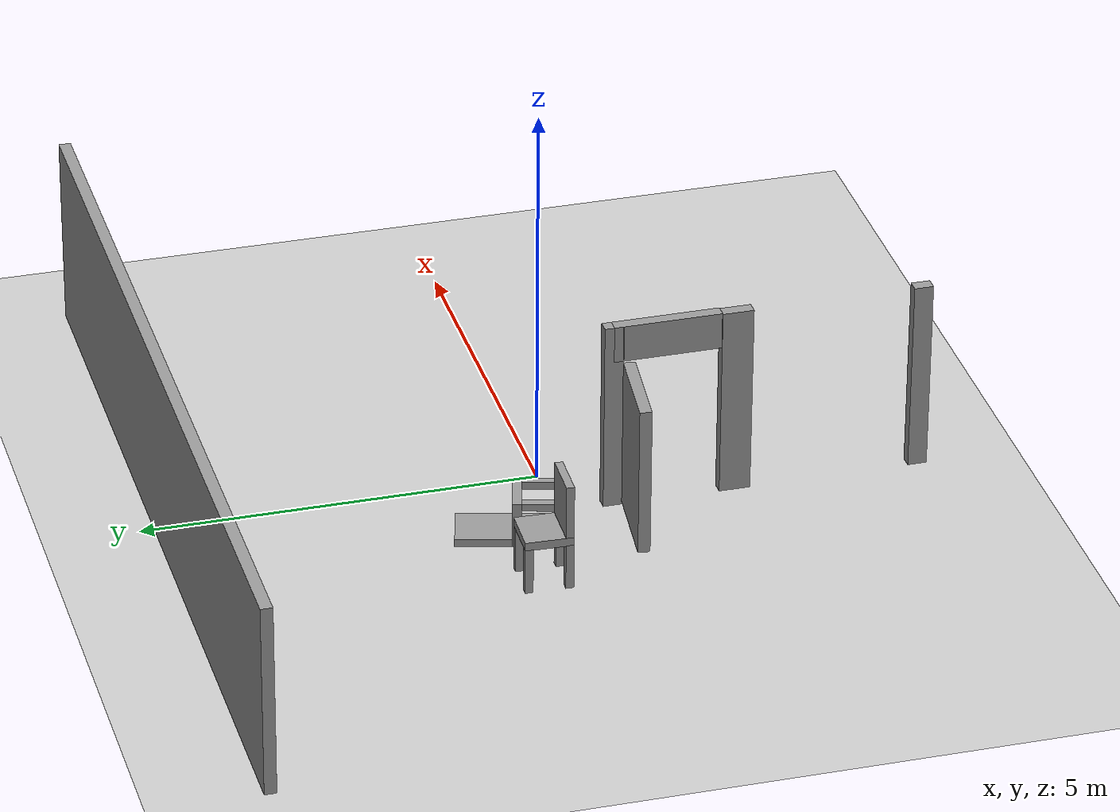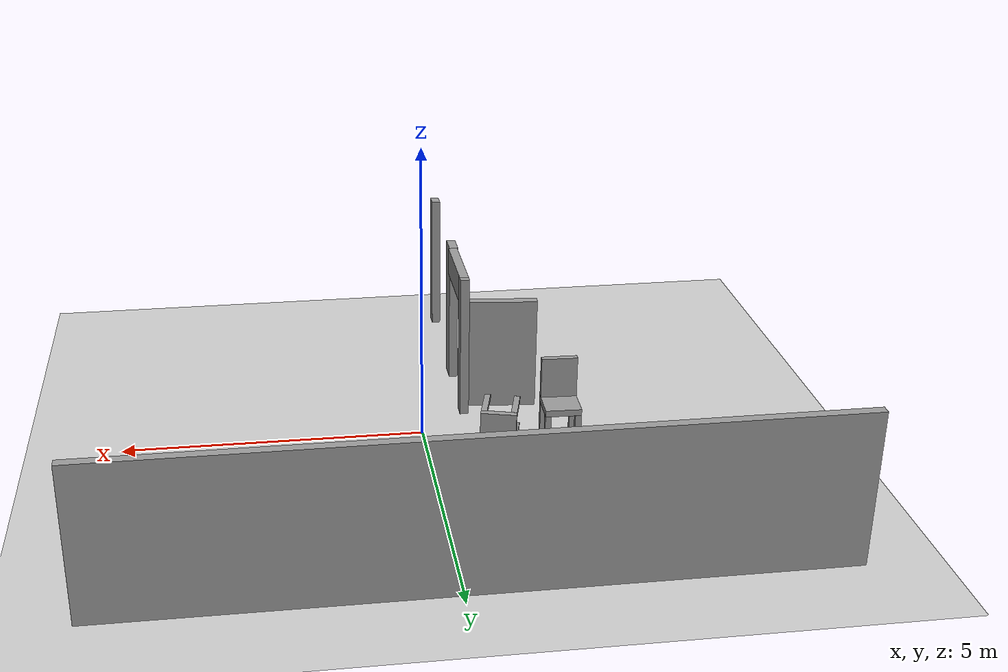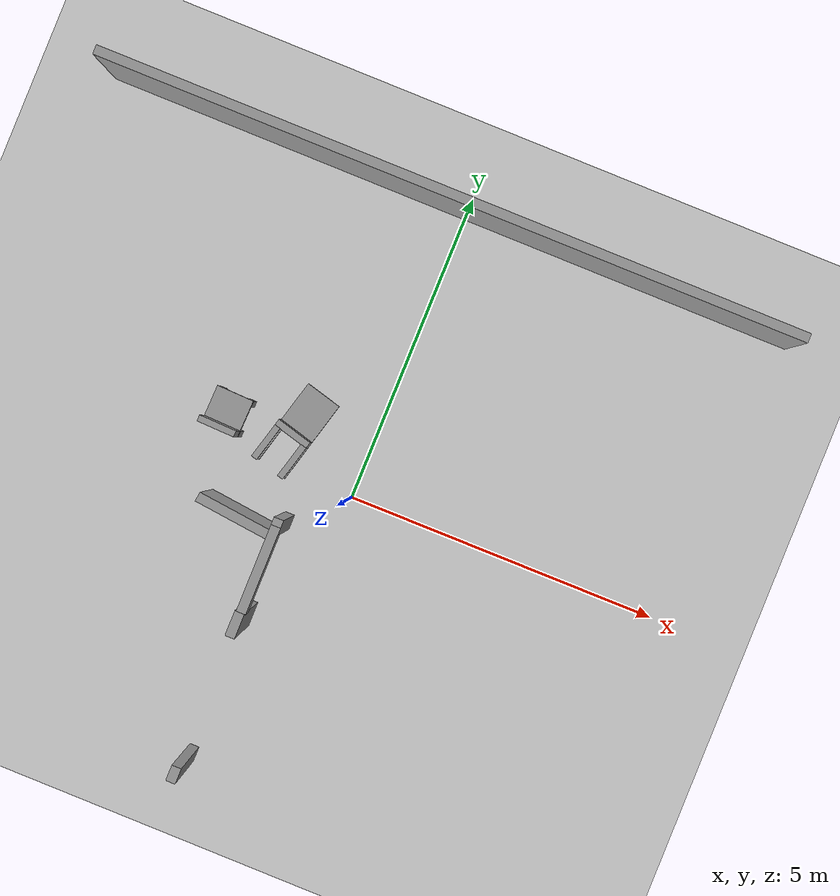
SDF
<sdf version="1.7">
 <world name="default">
  <model name="ground_plane">
   <static>1</static>
   <link name="link">
    <collision name="collision">
     <geometry><plane><normal>0 0 1</normal><size>100 100</size></plane></geometry>
     <surface>
      <contact><collide_bitmask>65535</collide_bitmask></contact>
      <friction><ode><mu>100</mu><mu2>50</mu2></ode></friction>
     </surface>
    </collision>
    <visual name="visual">
     <cast_shadows>0</cast_shadows>
     <geometry><plane><normal>0 0 1</normal><size>100 100</size></plane></geometry>
     <material>
      <script><uri>file://media/materials/scripts/gazebo.material</uri><name>Gazebo/Grey</name></script>
     </material>
    </visual>
   </link>
  </model>
  <model name="demo_clean">
   <link name="Wall_21_clone">
    <pose>-0.802658 -0.717313 0 0 0 -1.5708</pose>
    <inertial>
     <inertia><ixx>0</ixx><ixy>0</ixy><ixz>0</ixz><iyy>0</iyy><iyz>0</iyz><izz>0</izz></inertia>
     <mass>0</mass>
    </inertial>
    <visual name="Wall_21_Visual">
     <pose>0 0 1.25 0 -0 0</pose>
     <geometry><box><size>0.240964 0.15 2.5</size></box></geometry>
     <material>
      <script><uri>file://media/materials/scripts/gazebo.material</uri><name>Gazebo/Grey</name></script>
      <ambient>1 1 1 1</ambient>
      <shader type="pixel"/>
     </material>
     <meta><layer>0</layer></meta>
    </visual>
    <collision name="Wall_21_Collision">
     <pose>0 0 1.25 0 -0 0</pose>
     <geometry><box><size>0.240964 0.15 2.5</size></box></geometry>
     <surface>
      <friction>
       <ode><mu>1</mu><mu2>1</mu2><fdir1>0 0 0</fdir1><slip1>0</slip1><slip2>0</slip2></ode>
       <torsional>
        <coefficient>1</coefficient>
        <patch_radius>0</patch_radius>
        <surface_radius>0</surface_radius>
        <use_patch_radius>1</use_patch_radius>
        <ode><slip>0</slip></ode>
       </torsional>
      </friction>
      <bounce><restitution_coefficient>0</restitution_coefficient><threshold>1e+06</threshold></bounce>
      <contact>
       <collide_without_contact>0</collide_without_contact>
       <collide_without_contact_bitmask>1</collide_without_contact_bitmask>
       <collide_bitmask>1</collide_bitmask>
       <ode>
        <soft_cfm>0</soft_cfm>
        <soft_erp>0.2</soft_erp>
        <kp>1e+13</kp>
        <kd>1</kd>
        <max_vel>0.01</max_vel>
        <min_depth>0</min_depth>
       </ode>
       <bullet>
        <split_impulse>1</split_impulse>
        <split_impulse_penetration_threshold>-0.01</split_impulse_penetration_threshold>
        <soft_cfm>0</soft_cfm>
        <soft_erp>0.2</soft_erp>
        <kp>1e+13</kp>
        <kd>1</kd>
       </bullet>
      </contact>
     </surface>
    </collision>
   </link>
   <link name="Wall_21_clone_0">
    <pose>-0.820336 -2.26773 0 0 0 -1.5708</pose>
    <inertial>
     <inertia><ixx>0</ixx><ixy>0</ixy><ixz>0</ixz><iyy>0</iyy><iyz>0</iyz><izz>0</izz></inertia>
     <mass>0</mass>
    </inertial>
    <visual name="Wall_21_Visual">
     <pose>0 0 1.25 0 -0 0</pose>
     <geometry><box><size>0.394105 0.15 2.5</size></box></geometry>
     <material>
      <script><uri>file://media/materials/scripts/gazebo.material</uri><name>Gazebo/Grey</name></script>
      <ambient>1 1 1 1</ambient>
      <shader type="pixel"/>
     </material>
     <meta><layer>0</layer></meta>
    </visual>
    <collision name="Wall_21_Collision">
     <pose>0 0 1.25 0 -0 0</pose>
     <geometry><box><size>0.394105 0.15 2.5</size></box></geometry>
     <surface>
      <friction>
       <ode><mu>1</mu><mu2>1</mu2><fdir1>0 0 0</fdir1><slip1>0</slip1><slip2>0</slip2></ode>
       <torsional>
        <coefficient>1</coefficient>
        <patch_radius>0</patch_radius>
        <surface_radius>0</surface_radius>
        <use_patch_radius>1</use_patch_radius>
        <ode><slip>0</slip></ode>
       </torsional>
      </friction>
      <bounce><restitution_coefficient>0</restitution_coefficient><threshold>1e+06</threshold></bounce>
      <contact>
       <collide_without_contact>0</collide_without_contact>
       <collide_without_contact_bitmask>1</collide_without_contact_bitmask>
       <collide_bitmask>1</collide_bitmask>
       <ode>
        <soft_cfm>0</soft_cfm>
        <soft_erp>0.2</soft_erp>
        <kp>1e+13</kp>
        <kd>1</kd>
        <max_vel>0.01</max_vel>
        <min_depth>0</min_depth>
       </ode>
       <bullet>
        <split_impulse>1</split_impulse>
        <split_impulse_penetration_threshold>-0.01</split_impulse_penetration_threshold>
        <soft_cfm>0</soft_cfm>
        <soft_erp>0.2</soft_erp>
        <kp>1e+13</kp>
        <kd>1</kd>
       </bullet>
      </contact>
     </surface>
    </collision>
   </link>
   <link name="Wall_21_clone_0_clone_0_clone_clone">
    <pose>-1.47342 -0.839052 -0.23202 0 -0 3.0297</pose>
    <inertial>
     <inertia><ixx>0</ixx><ixy>0</ixy><ixz>0</ixz><iyy>0</iyy><iyz>0</iyz><izz>0</izz></inertia>
     <mass>0</mass>
    </inertial>
    <gravity>0</gravity>
    <visual name="Wall_21_Visual">
     <pose>0 0 1.25 0 -0 0</pose>
     <geometry><box><size>1.1941 0.15 1.96033</size></box></geometry>
     <material>
      <script><uri>file://media/materials/scripts/gazebo.material</uri><name>Gazebo/Grey</name></script>
      <ambient>1 1 1 1</ambient>
      <shader type="pixel"><normal_map>__default__</normal_map></shader>
      <diffuse>0.7 0.7 0.7 1</diffuse>
      <specular>0.01 0.01 0.01 1</specular>
      <emissive>0 0 0 1</emissive>
     </material>
     <meta><layer>0</layer></meta>
    </visual>
    <collision name="Wall_21_Collision">
     <pose>0 0 1.25 0 -0 0</pose>
     <geometry><box><size>1.1941 0.15 1.96033</size></box></geometry>
     <surface>
      <friction>
       <ode><mu>1</mu><mu2>1</mu2><fdir1>0 0 0</fdir1><slip1>0</slip1><slip2>0</slip2></ode>
       <torsional>
        <coefficient>1</coefficient>
        <patch_radius>0</patch_radius>
        <surface_radius>0</surface_radius>
        <use_patch_radius>1</use_patch_radius>
        <ode><slip>0</slip></ode>
       </torsional>
      </friction>
      <bounce><restitution_coefficient>0</restitution_coefficient><threshold>1e+06</threshold></bounce>
      <contact>
       <collide_without_contact>0</collide_without_contact>
       <collide_without_contact_bitmask>1</collide_without_contact_bitmask>
       <collide_bitmask>1</collide_bitmask>
       <ode>
        <soft_cfm>0</soft_cfm>
        <soft_erp>0.2</soft_erp>
        <kp>1e+13</kp>
        <kd>1</kd>
        <max_vel>0.01</max_vel>
        <min_depth>0</min_depth>
       </ode>
       <bullet>
        <split_impulse>1</split_impulse>
        <split_impulse_penetration_threshold>-0.01</split_impulse_penetration_threshold>
        <soft_cfm>0</soft_cfm>
        <soft_erp>0.2</soft_erp>
        <kp>1e+13</kp>
        <kd>1</kd>
       </bullet>
      </contact>
     </surface>
    </collision>
   </link>
   <link name="Wall_21_clone_clone">
    <pose>-0.824993 -4.62184 0 0 0 -1.5708</pose>
    <inertial>
     <inertia><ixx>0</ixx><ixy>0</ixy><ixz>0</ixz><iyy>0</iyy><iyz>0</iyz><izz>0</izz></inertia>
     <mass>0</mass>
    </inertial>
    <visual name="Wall_21_Visual">
     <pose>0 0 1.25 0 -0 0</pose>
     <geometry><box><size>0.240964 0.15 2.5</size></box></geometry>
     <material>
      <script><uri>file://media/materials/scripts/gazebo.material</uri><name>Gazebo/Grey</name></script>
      <ambient>1 1 1 1</ambient>
      <shader type="pixel"/>
     </material>
     <meta><layer>0</layer></meta>
    </visual>
    <collision name="Wall_21_Collision">
     <pose>0 0 1.25 0 -0 0</pose>
     <geometry><box><size>0.240964 0.15 2.5</size></box></geometry>
     <surface>
      <friction>
       <ode><mu>1</mu><mu2>1</mu2><fdir1>0 0 0</fdir1><slip1>0</slip1><slip2>0</slip2></ode>
       <torsional>
        <coefficient>1</coefficient>
        <patch_radius>0</patch_radius>
        <surface_radius>0</surface_radius>
        <use_patch_radius>1</use_patch_radius>
        <ode><slip>0</slip></ode>
       </torsional>
      </friction>
      <bounce><restitution_coefficient>0</restitution_coefficient><threshold>1e+06</threshold></bounce>
      <contact>
       <collide_without_contact>0</collide_without_contact>
       <collide_without_contact_bitmask>1</collide_without_contact_bitmask>
       <collide_bitmask>1</collide_bitmask>
       <ode>
        <soft_cfm>0</soft_cfm>
        <soft_erp>0.2</soft_erp>
        <kp>1e+13</kp>
        <kd>1</kd>
        <max_vel>0.01</max_vel>
        <min_depth>0</min_depth>
       </ode>
       <bullet>
        <split_impulse>1</split_impulse>
        <split_impulse_penetration_threshold>-0.01</split_impulse_penetration_threshold>
        <soft_cfm>0</soft_cfm>
        <soft_erp>0.2</soft_erp>
        <kp>1e+13</kp>
        <kd>1</kd>
       </bullet>
      </contact>
     </surface>
    </collision>
   </link>
   <link name="Wall_28_clone_clone_clone">
    <pose>-0.802228 -1.39589 1.01168 0 0 -1.57004</pose>
    <inertial>
     <inertia><ixx>0</ixx><ixy>0</ixy><ixz>0</ixz><iyy>0</iyy><iyz>0</iyz><izz>0</izz></inertia>
     <mass>0</mass>
    </inertial>
    <gravity>0</gravity>
    <visual name="Wall_28_Visual">
     <pose>0 0 1.25 0 -0 0</pose>
     <geometry><box><size>1.35894 0.15 0.476648</size></box></geometry>
     <material>
      <script><uri>file://media/materials/scripts/gazebo.material</uri><name>Gazebo/Grey</name></script>
      <ambient>1 1 1 1</ambient>
      <shader type="pixel"><normal_map>__default__</normal_map></shader>
     </material>
     <meta><layer>0</layer></meta>
    </visual>
    <collision name="Wall_28_Collision">
     <pose>0 0 1.25 0 -0 0</pose>
     <geometry><box><size>1.35894 0.15 0.476648</size></box></geometry>
     <surface>
      <friction>
       <ode><mu>1</mu><mu2>1</mu2><fdir1>0 0 0</fdir1><slip1>0</slip1><slip2>0</slip2></ode>
       <torsional>
        <coefficient>1</coefficient>
        <patch_radius>0</patch_radius>
        <surface_radius>0</surface_radius>
        <use_patch_radius>1</use_patch_radius>
        <ode><slip>0</slip></ode>
       </torsional>
      </friction>
      <bounce><restitution_coefficient>0</restitution_coefficient><threshold>1e+06</threshold></bounce>
      <contact>
       <collide_without_contact>0</collide_without_contact>
       <collide_without_contact_bitmask>1</collide_without_contact_bitmask>
       <collide_bitmask>1</collide_bitmask>
       <ode>
        <soft_cfm>0</soft_cfm>
        <soft_erp>0.2</soft_erp>
        <kp>1e+13</kp>
        <kd>1</kd>
        <max_vel>0.01</max_vel>
        <min_depth>0</min_depth>
       </ode>
       <bullet>
        <split_impulse>1</split_impulse>
        <split_impulse_penetration_threshold>-0.01</split_impulse_penetration_threshold>
        <soft_cfm>0</soft_cfm>
        <soft_erp>0.2</soft_erp>
        <kp>1e+13</kp>
        <kd>1</kd>
       </bullet>
      </contact>
     </surface>
    </collision>
   </link>
   <link name="Wall_9">
    <pose>-0.246486 4.74118 0 0 -0 0</pose>
    <visual name="Wall_9_Visual">
     <pose>0 0 1.25 0 -0 0</pose>
     <geometry><box><size>11.25 0.15 2.5</size></box></geometry>
     <material>
      <script><uri>file://media/materials/scripts/gazebo.material</uri><name>Gazebo/Grey</name></script>
      <ambient>1 1 1 1</ambient>
      <shader type="pixel"/>
     </material>
     <meta><layer>0</layer></meta>
    </visual>
    <collision name="Wall_9_Collision">
     <pose>0 0 1.25 0 -0 0</pose>
     <geometry><box><size>11.25 0.15 2.5</size></box></geometry>
     <surface>
      <friction>
       <ode><mu>1</mu><mu2>1</mu2><fdir1>0 0 0</fdir1><slip1>0</slip1><slip2>0</slip2></ode>
       <torsional>
        <coefficient>1</coefficient>
        <patch_radius>0</patch_radius>
        <surface_radius>0</surface_radius>
        <use_patch_radius>1</use_patch_radius>
        <ode><slip>0</slip></ode>
       </torsional>
      </friction>
      <bounce><restitution_coefficient>0</restitution_coefficient><threshold>1e+06</threshold></bounce>
      <contact>
       <collide_without_contact>0</collide_without_contact>
       <collide_without_contact_bitmask>1</collide_without_contact_bitmask>
       <collide_bitmask>1</collide_bitmask>
       <ode>
        <soft_cfm>0</soft_cfm>
        <soft_erp>0.2</soft_erp>
        <kp>1e+13</kp>
        <kd>1</kd>
        <max_vel>0.01</max_vel>
        <min_depth>0</min_depth>
       </ode>
       <bullet>
        <split_impulse>1</split_impulse>
        <split_impulse_penetration_threshold>-0.01</split_impulse_penetration_threshold>
        <soft_cfm>0</soft_cfm>
        <soft_erp>0.2</soft_erp>
        <kp>1e+13</kp>
        <kd>1</kd>
       </bullet>
      </contact>
     </surface>
    </collision>
   </link>
   <static>1</static>
  </model>
  <model name="simple_chair_0_clone">
   <link name="link_0_clone">
    <inertial>
     <mass>1</mass>
     <inertia>
      <ixx>0.166667</ixx>
      <ixy>0</ixy>
      <ixz>0</ixz>
      <iyy>0.166667</iyy>
      <iyz>0</iyz>
      <izz>0.166667</izz>
     </inertia>
    </inertial>
    <pose>-0.041667 -0 0.165833 0 -0 0</pose>
    <visual name="visual">
     <geometry><box><size>0.6 0.6 0.11</size></box></geometry>
     <material>
      <lighting>1</lighting>
      <script><uri>file://media/materials/scripts/gazebo.material</uri><name>Gazebo/Grey</name></script>
      <shader type="pixel"><normal_map>__default__</normal_map></shader>
      <ambient>0.3 0.3 0.3 1</ambient>
      <diffuse>0.7 0.7 0.7 1</diffuse>
      <specular>0.01 0.01 0.01 1</specular>
      <emissive>0 0 0 1</emissive>
     </material>
    </visual>
    <collision name="collision">
     <geometry><box><size>0.6 0.6 0.1</size></box></geometry>
     <surface>
      <friction>
       <ode><mu>1</mu><mu2>1</mu2><fdir1>0 0 0</fdir1><slip1>0</slip1><slip2>0</slip2></ode>
       <torsional>
        <coefficient>1</coefficient>
        <patch_radius>0</patch_radius>
        <surface_radius>0</surface_radius>
        <use_patch_radius>1</use_patch_radius>
        <ode><slip>0</slip></ode>
       </torsional>
      </friction>
      <bounce><restitution_coefficient>0</restitution_coefficient><threshold>1e+06</threshold></bounce>
      <contact>
       <collide_without_contact>0</collide_without_contact>
       <collide_without_contact_bitmask>1</collide_without_contact_bitmask>
       <collide_bitmask>1</collide_bitmask>
       <ode>
        <soft_cfm>0</soft_cfm>
        <soft_erp>0.2</soft_erp>
        <kp>1e+13</kp>
        <kd>1</kd>
        <max_vel>0.01</max_vel>
        <min_depth>0</min_depth>
       </ode>
       <bullet>
        <split_impulse>1</split_impulse>
        <split_impulse_penetration_threshold>-0.01</split_impulse_penetration_threshold>
        <soft_cfm>0</soft_cfm>
        <soft_erp>0.2</soft_erp>
        <kp>1e+13</kp>
        <kd>1</kd>
       </bullet>
      </contact>
     </surface>
    </collision>
   </link>
   <link name="link_1_clone">
    <inertial>
     <mass>1</mass>
     <inertia>
      <ixx>0.166667</ixx>
      <ixy>0</ixy>
      <ixz>0</ixz>
      <iyy>0.166667</iyy>
      <iyz>0</iyz>
      <izz>0.166667</izz>
     </inertia>
    </inertial>
    <pose>-0.291667 0.25 -0.184167 0 -0 0</pose>
    <visual name="visual">
     <geometry><box><size>0.1 0.1 0.6</size></box></geometry>
     <material>
      <lighting>1</lighting>
      <script><uri>file://media/materials/scripts/gazebo.material</uri><name>Gazebo/Grey</name></script>
      <shader type="pixel"><normal_map>__default__</normal_map></shader>
      <ambient>0.3 0.3 0.3 1</ambient>
      <diffuse>0.7 0.7 0.7 1</diffuse>
      <specular>0.01 0.01 0.01 1</specular>
      <emissive>0 0 0 1</emissive>
     </material>
    </visual>
    <collision name="collision">
     <geometry><box><size>0.1 0.1 0.6</size></box></geometry>
     <surface>
      <friction>
       <ode><mu>1</mu><mu2>1</mu2><fdir1>0 0 0</fdir1><slip1>0</slip1><slip2>0</slip2></ode>
       <torsional>
        <coefficient>1</coefficient>
        <patch_radius>0</patch_radius>
        <surface_radius>0</surface_radius>
        <use_patch_radius>1</use_patch_radius>
        <ode><slip>0</slip></ode>
       </torsional>
      </friction>
      <bounce><restitution_coefficient>0</restitution_coefficient><threshold>1e+06</threshold></bounce>
      <contact>
       <collide_without_contact>0</collide_without_contact>
       <collide_without_contact_bitmask>1</collide_without_contact_bitmask>
       <collide_bitmask>1</collide_bitmask>
       <ode>
        <soft_cfm>0</soft_cfm>
        <soft_erp>0.2</soft_erp>
        <kp>1e+13</kp>
        <kd>1</kd>
        <max_vel>0.01</max_vel>
        <min_depth>0</min_depth>
       </ode>
       <bullet>
        <split_impulse>1</split_impulse>
        <split_impulse_penetration_threshold>-0.01</split_impulse_penetration_threshold>
        <soft_cfm>0</soft_cfm>
        <soft_erp>0.2</soft_erp>
        <kp>1e+13</kp>
        <kd>1</kd>
       </bullet>
      </contact>
     </surface>
    </collision>
   </link>
   <link name="link_1_clone_0">
    <inertial>
     <mass>1</mass>
     <inertia>
      <ixx>0.166667</ixx>
      <ixy>0</ixy>
      <ixz>0</ixz>
      <iyy>0.166667</iyy>
      <iyz>0</iyz>
      <izz>0.166667</izz>
     </inertia>
    </inertial>
    <pose>0.208333 0.25 -0.184167 0 -0 0</pose>
    <visual name="visual">
     <geometry><box><size>0.1 0.1 0.6</size></box></geometry>
     <material>
      <lighting>1</lighting>
      <script><uri>file://media/materials/scripts/gazebo.material</uri><name>Gazebo/Grey</name></script>
      <shader type="pixel"><normal_map>__default__</normal_map></shader>
      <ambient>0.3 0.3 0.3 1</ambient>
      <diffuse>0.7 0.7 0.7 1</diffuse>
      <specular>0.01 0.01 0.01 1</specular>
      <emissive>0 0 0 1</emissive>
     </material>
    </visual>
    <collision name="collision">
     <geometry><box><size>0.1 0.1 0.6</size></box></geometry>
     <surface>
      <friction>
       <ode><mu>1</mu><mu2>1</mu2><fdir1>0 0 0</fdir1><slip1>0</slip1><slip2>0</slip2></ode>
       <torsional>
        <coefficient>1</coefficient>
        <patch_radius>0</patch_radius>
        <surface_radius>0</surface_radius>
        <use_patch_radius>1</use_patch_radius>
        <ode><slip>0</slip></ode>
       </torsional>
      </friction>
      <bounce><restitution_coefficient>0</restitution_coefficient><threshold>1e+06</threshold></bounce>
      <contact>
       <collide_without_contact>0</collide_without_contact>
       <collide_without_contact_bitmask>1</collide_without_contact_bitmask>
       <collide_bitmask>1</collide_bitmask>
       <ode>
        <soft_cfm>0</soft_cfm>
        <soft_erp>0.2</soft_erp>
        <kp>1e+13</kp>
        <kd>1</kd>
        <max_vel>0.01</max_vel>
        <min_depth>0</min_depth>
       </ode>
       <bullet>
        <split_impulse>1</split_impulse>
        <split_impulse_penetration_threshold>-0.01</split_impulse_penetration_threshold>
        <soft_cfm>0</soft_cfm>
        <soft_erp>0.2</soft_erp>
        <kp>1e+13</kp>
        <kd>1</kd>
       </bullet>
      </contact>
     </surface>
    </collision>
   </link>
   <link name="link_1_clone_1">
    <inertial>
     <mass>1</mass>
     <inertia>
      <ixx>0.166667</ixx>
      <ixy>0</ixy>
      <ixz>0</ixz>
      <iyy>0.166667</iyy>
      <iyz>0</iyz>
      <izz>0.166667</izz>
     </inertia>
    </inertial>
    <pose>0.208333 -0.25 -0.184167 0 -0 0</pose>
    <visual name="visual">
     <geometry><box><size>0.1 0.1 0.6</size></box></geometry>
     <material>
      <lighting>1</lighting>
      <script><uri>file://media/materials/scripts/gazebo.material</uri><name>Gazebo/Grey</name></script>
      <shader type="pixel"><normal_map>__default__</normal_map></shader>
      <ambient>0.3 0.3 0.3 1</ambient>
      <diffuse>0.7 0.7 0.7 1</diffuse>
      <specular>0.01 0.01 0.01 1</specular>
      <emissive>0 0 0 1</emissive>
     </material>
    </visual>
    <collision name="collision">
     <geometry><box><size>0.1 0.1 0.6</size></box></geometry>
     <surface>
      <friction>
       <ode><mu>1</mu><mu2>1</mu2><fdir1>0 0 0</fdir1><slip1>0</slip1><slip2>0</slip2></ode>
       <torsional>
        <coefficient>1</coefficient>
        <patch_radius>0</patch_radius>
        <surface_radius>0</surface_radius>
        <use_patch_radius>1</use_patch_radius>
        <ode><slip>0</slip></ode>
       </torsional>
      </friction>
      <bounce><restitution_coefficient>0</restitution_coefficient><threshold>1e+06</threshold></bounce>
      <contact>
       <collide_without_contact>0</collide_without_contact>
       <collide_without_contact_bitmask>1</collide_without_contact_bitmask>
       <collide_bitmask>1</collide_bitmask>
       <ode>
        <soft_cfm>0</soft_cfm>
        <soft_erp>0.2</soft_erp>
        <kp>1e+13</kp>
        <kd>1</kd>
        <max_vel>0.01</max_vel>
        <min_depth>0</min_depth>
       </ode>
       <bullet>
        <split_impulse>1</split_impulse>
        <split_impulse_penetration_threshold>-0.01</split_impulse_penetration_threshold>
        <soft_cfm>0</soft_cfm>
        <soft_erp>0.2</soft_erp>
        <kp>1e+13</kp>
        <kd>1</kd>
       </bullet>
      </contact>
     </surface>
    </collision>
   </link>
   <link name="link_1_clone_clone">
    <inertial>
     <mass>1</mass>
     <inertia>
      <ixx>0.166667</ixx>
      <ixy>0</ixy>
      <ixz>0</ixz>
      <iyy>0.166667</iyy>
      <iyz>0</iyz>
      <izz>0.166667</izz>
     </inertia>
    </inertial>
    <pose>-0.291667 -0.25 -0.184167 0 -0 0</pose>
    <visual name="visual">
     <geometry><box><size>0.1 0.1 0.6</size></box></geometry>
     <material>
      <lighting>1</lighting>
      <script><uri>file://media/materials/scripts/gazebo.material</uri><name>Gazebo/Grey</name></script>
      <shader type="pixel"><normal_map>__default__</normal_map></shader>
      <ambient>0.3 0.3 0.3 1</ambient>
      <diffuse>0.7 0.7 0.7 1</diffuse>
      <specular>0.01 0.01 0.01 1</specular>
      <emissive>0 0 0 1</emissive>
     </material>
    </visual>
    <collision name="collision">
     <geometry><box><size>0.1 0.1 0.6</size></box></geometry>
     <surface>
      <friction>
       <ode><mu>1</mu><mu2>1</mu2><fdir1>0 0 0</fdir1><slip1>0</slip1><slip2>0</slip2></ode>
       <torsional>
        <coefficient>1</coefficient>
        <patch_radius>0</patch_radius>
        <surface_radius>0</surface_radius>
        <use_patch_radius>1</use_patch_radius>
        <ode><slip>0</slip></ode>
       </torsional>
      </friction>
      <bounce><restitution_coefficient>0</restitution_coefficient><threshold>1e+06</threshold></bounce>
      <contact>
       <collide_without_contact>0</collide_without_contact>
       <collide_without_contact_bitmask>1</collide_without_contact_bitmask>
       <collide_bitmask>1</collide_bitmask>
       <ode>
        <soft_cfm>0</soft_cfm>
        <soft_erp>0.2</soft_erp>
        <kp>1e+13</kp>
        <kd>1</kd>
        <max_vel>0.01</max_vel>
        <min_depth>0</min_depth>
       </ode>
       <bullet>
        <split_impulse>1</split_impulse>
        <split_impulse_penetration_threshold>-0.01</split_impulse_penetration_threshold>
        <soft_cfm>0</soft_cfm>
        <soft_erp>0.2</soft_erp>
        <kp>1e+13</kp>
        <kd>1</kd>
       </bullet>
      </contact>
     </surface>
    </collision>
   </link>
   <link name="link_2_clone">
    <inertial>
     <mass>1</mass>
     <inertia>
      <ixx>0.166667</ixx>
      <ixy>0</ixy>
      <ixz>0</ixz>
      <iyy>0.166667</iyy>
      <iyz>0</iyz>
      <izz>0.166667</izz>
     </inertia>
    </inertial>
    <pose>0.208333 -0 0.570833 0 -0 0</pose>
    <visual name="visual">
     <geometry><box><size>0.1 0.6 0.7</size></box></geometry>
     <material>
      <lighting>1</lighting>
      <script><uri>file://media/materials/scripts/gazebo.material</uri><name>Gazebo/Grey</name></script>
      <shader type="pixel"><normal_map>__default__</normal_map></shader>
      <ambient>0.3 0.3 0.3 1</ambient>
      <diffuse>0.7 0.7 0.7 1</diffuse>
      <specular>0.01 0.01 0.01 1</specular>
      <emissive>0 0 0 1</emissive>
     </material>
    </visual>
    <collision name="collision">
     <geometry><box><size>0.1 0.6 0.7</size></box></geometry>
     <surface>
      <friction>
       <ode><mu>1</mu><mu2>1</mu2><fdir1>0 0 0</fdir1><slip1>0</slip1><slip2>0</slip2></ode>
       <torsional>
        <coefficient>1</coefficient>
        <patch_radius>0</patch_radius>
        <surface_radius>0</surface_radius>
        <use_patch_radius>1</use_patch_radius>
        <ode><slip>0</slip></ode>
       </torsional>
      </friction>
      <bounce><restitution_coefficient>0</restitution_coefficient><threshold>1e+06</threshold></bounce>
      <contact>
       <collide_without_contact>0</collide_without_contact>
       <collide_without_contact_bitmask>1</collide_without_contact_bitmask>
       <collide_bitmask>1</collide_bitmask>
       <ode>
        <soft_cfm>0</soft_cfm>
        <soft_erp>0.2</soft_erp>
        <kp>1e+13</kp>
        <kd>1</kd>
        <max_vel>0.01</max_vel>
        <min_depth>0</min_depth>
       </ode>
       <bullet>
        <split_impulse>1</split_impulse>
        <split_impulse_penetration_threshold>-0.01</split_impulse_penetration_threshold>
        <soft_cfm>0</soft_cfm>
        <soft_erp>0.2</soft_erp>
        <kp>1e+13</kp>
        <kd>1</kd>
       </bullet>
      </contact>
     </surface>
    </collision>
   </link>
   <joint name="link_0_clone_JOINT_0" type="fixed">
    <parent>link_0_clone</parent>
    <child>link_1_clone_clone</child>
    <physics>
     <ode><limit><cfm>0</cfm><erp>0.2</erp></limit><suspension><cfm>0</cfm><erp>0.2</erp></suspension></ode>
    </physics>
   </joint>
   <joint name="link_0_clone_JOINT_1" type="fixed">
    <parent>link_0_clone</parent>
    <child>link_1_clone</child>
    <physics>
     <ode><limit><cfm>0</cfm><erp>0.2</erp></limit><suspension><cfm>0</cfm><erp>0.2</erp></suspension></ode>
    </physics>
   </joint>
   <joint name="link_0_clone_JOINT_2" type="fixed">
    <parent>link_0_clone</parent>
    <child>link_1_clone_1</child>
    <physics>
     <ode><limit><cfm>0</cfm><erp>0.2</erp></limit><suspension><cfm>0</cfm><erp>0.2</erp></suspension></ode>
    </physics>
   </joint>
   <joint name="link_0_clone_JOINT_3" type="fixed">
    <parent>link_0_clone</parent>
    <child>link_2_clone</child>
    <physics>
     <ode><limit><cfm>0</cfm><erp>0.2</erp></limit><suspension><cfm>0</cfm><erp>0.2</erp></suspension></ode>
    </physics>
   </joint>
   <joint name="link_0_clone_JOINT_4" type="fixed">
    <parent>link_0_clone</parent>
    <child>link_1_clone_0</child>
    <physics>
     <ode><limit><cfm>0</cfm><erp>0.2</erp></limit><suspension><cfm>0</cfm><erp>0.2</erp></suspension></ode>
    </physics>
   </joint>
   <static>0</static>
   <pose>-2.24741 0.489305 0.484167 0 0 -1.60209</pose>
  </model>
  <model name="simple_chair_0_clone_0_clone_clone">
   <link name="link_0_clone">
    <inertial>
     <mass>1</mass>
     <inertia>
      <ixx>0.166667</ixx>
      <ixy>0</ixy>
      <ixz>0</ixz>
      <iyy>0.166667</iyy>
      <iyz>0</iyz>
      <izz>0.166667</izz>
     </inertia>
    </inertial>
    <pose>-0.041667 -0 0.165833 0 -0 0</pose>
    <visual name="visual">
     <geometry><box><size>0.6 0.6 0.11</size></box></geometry>
     <material>
      <lighting>1</lighting>
      <script><uri>file://media/materials/scripts/gazebo.material</uri><name>Gazebo/Grey</name></script>
      <shader type="pixel"><normal_map>__default__</normal_map></shader>
      <ambient>0.3 0.3 0.3 1</ambient>
      <diffuse>0.7 0.7 0.7 1</diffuse>
      <specular>0.01 0.01 0.01 1</specular>
      <emissive>0 0 0 1</emissive>
     </material>
    </visual>
    <collision name="collision">
     <geometry><box><size>0.6 0.6 0.1</size></box></geometry>
     <surface>
      <friction>
       <ode><mu>1</mu><mu2>1</mu2><fdir1>0 0 0</fdir1><slip1>0</slip1><slip2>0</slip2></ode>
       <torsional>
        <coefficient>1</coefficient>
        <patch_radius>0</patch_radius>
        <surface_radius>0</surface_radius>
        <use_patch_radius>1</use_patch_radius>
        <ode><slip>0</slip></ode>
       </torsional>
      </friction>
      <bounce><restitution_coefficient>0</restitution_coefficient><threshold>1e+06</threshold></bounce>
      <contact>
       <collide_without_contact>0</collide_without_contact>
       <collide_without_contact_bitmask>1</collide_without_contact_bitmask>
       <collide_bitmask>1</collide_bitmask>
       <ode>
        <soft_cfm>0</soft_cfm>
        <soft_erp>0.2</soft_erp>
        <kp>1e+13</kp>
        <kd>1</kd>
        <max_vel>0.01</max_vel>
        <min_depth>0</min_depth>
       </ode>
       <bullet>
        <split_impulse>1</split_impulse>
        <split_impulse_penetration_threshold>-0.01</split_impulse_penetration_threshold>
        <soft_cfm>0</soft_cfm>
        <soft_erp>0.2</soft_erp>
        <kp>1e+13</kp>
        <kd>1</kd>
       </bullet>
      </contact>
     </surface>
    </collision>
   </link>
   <link name="link_1_clone">
    <inertial>
     <mass>1</mass>
     <inertia>
      <ixx>0.166667</ixx>
      <ixy>0</ixy>
      <ixz>0</ixz>
      <iyy>0.166667</iyy>
      <iyz>0</iyz>
      <izz>0.166667</izz>
     </inertia>
    </inertial>
    <pose>-0.291667 0.25 -0.184167 0 -0 0</pose>
    <visual name="visual">
     <geometry><box><size>0.1 0.1 0.6</size></box></geometry>
     <material>
      <lighting>1</lighting>
      <script><uri>file://media/materials/scripts/gazebo.material</uri><name>Gazebo/Grey</name></script>
      <shader type="pixel"><normal_map>__default__</normal_map></shader>
      <ambient>0.3 0.3 0.3 1</ambient>
      <diffuse>0.7 0.7 0.7 1</diffuse>
      <specular>0.01 0.01 0.01 1</specular>
      <emissive>0 0 0 1</emissive>
     </material>
    </visual>
    <collision name="collision">
     <geometry><box><size>0.1 0.1 0.6</size></box></geometry>
     <surface>
      <friction>
       <ode><mu>1</mu><mu2>1</mu2><fdir1>0 0 0</fdir1><slip1>0</slip1><slip2>0</slip2></ode>
       <torsional>
        <coefficient>1</coefficient>
        <patch_radius>0</patch_radius>
        <surface_radius>0</surface_radius>
        <use_patch_radius>1</use_patch_radius>
        <ode><slip>0</slip></ode>
       </torsional>
      </friction>
      <bounce><restitution_coefficient>0</restitution_coefficient><threshold>1e+06</threshold></bounce>
      <contact>
       <collide_without_contact>0</collide_without_contact>
       <collide_without_contact_bitmask>1</collide_without_contact_bitmask>
       <collide_bitmask>1</collide_bitmask>
       <ode>
        <soft_cfm>0</soft_cfm>
        <soft_erp>0.2</soft_erp>
        <kp>1e+13</kp>
        <kd>1</kd>
        <max_vel>0.01</max_vel>
        <min_depth>0</min_depth>
       </ode>
       <bullet>
        <split_impulse>1</split_impulse>
        <split_impulse_penetration_threshold>-0.01</split_impulse_penetration_threshold>
        <soft_cfm>0</soft_cfm>
        <soft_erp>0.2</soft_erp>
        <kp>1e+13</kp>
        <kd>1</kd>
       </bullet>
      </contact>
     </surface>
    </collision>
   </link>
   <link name="link_1_clone_0">
    <inertial>
     <mass>1</mass>
     <inertia>
      <ixx>0.166667</ixx>
      <ixy>0</ixy>
      <ixz>0</ixz>
      <iyy>0.166667</iyy>
      <iyz>0</iyz>
      <izz>0.166667</izz>
     </inertia>
    </inertial>
    <pose>0.208333 0.25 -0.184167 0 -0 0</pose>
    <visual name="visual">
     <geometry><box><size>0.1 0.1 0.6</size></box></geometry>
     <material>
      <lighting>1</lighting>
      <script><uri>file://media/materials/scripts/gazebo.material</uri><name>Gazebo/Grey</name></script>
      <shader type="pixel"><normal_map>__default__</normal_map></shader>
      <ambient>0.3 0.3 0.3 1</ambient>
      <diffuse>0.7 0.7 0.7 1</diffuse>
      <specular>0.01 0.01 0.01 1</specular>
      <emissive>0 0 0 1</emissive>
     </material>
    </visual>
    <collision name="collision">
     <geometry><box><size>0.1 0.1 0.6</size></box></geometry>
     <surface>
      <friction>
       <ode><mu>1</mu><mu2>1</mu2><fdir1>0 0 0</fdir1><slip1>0</slip1><slip2>0</slip2></ode>
       <torsional>
        <coefficient>1</coefficient>
        <patch_radius>0</patch_radius>
        <surface_radius>0</surface_radius>
        <use_patch_radius>1</use_patch_radius>
        <ode><slip>0</slip></ode>
       </torsional>
      </friction>
      <bounce><restitution_coefficient>0</restitution_coefficient><threshold>1e+06</threshold></bounce>
      <contact>
       <collide_without_contact>0</collide_without_contact>
       <collide_without_contact_bitmask>1</collide_without_contact_bitmask>
       <collide_bitmask>1</collide_bitmask>
       <ode>
        <soft_cfm>0</soft_cfm>
        <soft_erp>0.2</soft_erp>
        <kp>1e+13</kp>
        <kd>1</kd>
        <max_vel>0.01</max_vel>
        <min_depth>0</min_depth>
       </ode>
       <bullet>
        <split_impulse>1</split_impulse>
        <split_impulse_penetration_threshold>-0.01</split_impulse_penetration_threshold>
        <soft_cfm>0</soft_cfm>
        <soft_erp>0.2</soft_erp>
        <kp>1e+13</kp>
        <kd>1</kd>
       </bullet>
      </contact>
     </surface>
    </collision>
   </link>
   <link name="link_1_clone_1">
    <inertial>
     <mass>1</mass>
     <inertia>
      <ixx>0.166667</ixx>
      <ixy>0</ixy>
      <ixz>0</ixz>
      <iyy>0.166667</iyy>
      <iyz>0</iyz>
      <izz>0.166667</izz>
     </inertia>
    </inertial>
    <pose>0.208333 -0.25 -0.184167 0 -0 0</pose>
    <visual name="visual">
     <geometry><box><size>0.1 0.1 0.6</size></box></geometry>
     <material>
      <lighting>1</lighting>
      <script><uri>file://media/materials/scripts/gazebo.material</uri><name>Gazebo/Grey</name></script>
      <shader type="pixel"><normal_map>__default__</normal_map></shader>
      <ambient>0.3 0.3 0.3 1</ambient>
      <diffuse>0.7 0.7 0.7 1</diffuse>
      <specular>0.01 0.01 0.01 1</specular>
      <emissive>0 0 0 1</emissive>
     </material>
    </visual>
    <collision name="collision">
     <geometry><box><size>0.1 0.1 0.6</size></box></geometry>
     <surface>
      <friction>
       <ode><mu>1</mu><mu2>1</mu2><fdir1>0 0 0</fdir1><slip1>0</slip1><slip2>0</slip2></ode>
       <torsional>
        <coefficient>1</coefficient>
        <patch_radius>0</patch_radius>
        <surface_radius>0</surface_radius>
        <use_patch_radius>1</use_patch_radius>
        <ode><slip>0</slip></ode>
       </torsional>
      </friction>
      <bounce><restitution_coefficient>0</restitution_coefficient><threshold>1e+06</threshold></bounce>
      <contact>
       <collide_without_contact>0</collide_without_contact>
       <collide_without_contact_bitmask>1</collide_without_contact_bitmask>
       <collide_bitmask>1</collide_bitmask>
       <ode>
        <soft_cfm>0</soft_cfm>
        <soft_erp>0.2</soft_erp>
        <kp>1e+13</kp>
        <kd>1</kd>
        <max_vel>0.01</max_vel>
        <min_depth>0</min_depth>
       </ode>
       <bullet>
        <split_impulse>1</split_impulse>
        <split_impulse_penetration_threshold>-0.01</split_impulse_penetration_threshold>
        <soft_cfm>0</soft_cfm>
        <soft_erp>0.2</soft_erp>
        <kp>1e+13</kp>
        <kd>1</kd>
       </bullet>
      </contact>
     </surface>
    </collision>
   </link>
   <link name="link_1_clone_clone">
    <inertial>
     <mass>1</mass>
     <inertia>
      <ixx>0.166667</ixx>
      <ixy>0</ixy>
      <ixz>0</ixz>
      <iyy>0.166667</iyy>
      <iyz>0</iyz>
      <izz>0.166667</izz>
     </inertia>
    </inertial>
    <pose>-0.291667 -0.25 -0.184167 0 -0 0</pose>
    <visual name="visual">
     <geometry><box><size>0.1 0.1 0.6</size></box></geometry>
     <material>
      <lighting>1</lighting>
      <script><uri>file://media/materials/scripts/gazebo.material</uri><name>Gazebo/Grey</name></script>
      <shader type="pixel"><normal_map>__default__</normal_map></shader>
      <ambient>0.3 0.3 0.3 1</ambient>
      <diffuse>0.7 0.7 0.7 1</diffuse>
      <specular>0.01 0.01 0.01 1</specular>
      <emissive>0 0 0 1</emissive>
     </material>
    </visual>
    <collision name="collision">
     <geometry><box><size>0.1 0.1 0.6</size></box></geometry>
     <surface>
      <friction>
       <ode><mu>1</mu><mu2>1</mu2><fdir1>0 0 0</fdir1><slip1>0</slip1><slip2>0</slip2></ode>
       <torsional>
        <coefficient>1</coefficient>
        <patch_radius>0</patch_radius>
        <surface_radius>0</surface_radius>
        <use_patch_radius>1</use_patch_radius>
        <ode><slip>0</slip></ode>
       </torsional>
      </friction>
      <bounce><restitution_coefficient>0</restitution_coefficient><threshold>1e+06</threshold></bounce>
      <contact>
       <collide_without_contact>0</collide_without_contact>
       <collide_without_contact_bitmask>1</collide_without_contact_bitmask>
       <collide_bitmask>1</collide_bitmask>
       <ode>
        <soft_cfm>0</soft_cfm>
        <soft_erp>0.2</soft_erp>
        <kp>1e+13</kp>
        <kd>1</kd>
        <max_vel>0.01</max_vel>
        <min_depth>0</min_depth>
       </ode>
       <bullet>
        <split_impulse>1</split_impulse>
        <split_impulse_penetration_threshold>-0.01</split_impulse_penetration_threshold>
        <soft_cfm>0</soft_cfm>
        <soft_erp>0.2</soft_erp>
        <kp>1e+13</kp>
        <kd>1</kd>
       </bullet>
      </contact>
     </surface>
    </collision>
   </link>
   <link name="link_2_clone">
    <inertial>
     <mass>1</mass>
     <inertia>
      <ixx>0.166667</ixx>
      <ixy>0</ixy>
      <ixz>0</ixz>
      <iyy>0.166667</iyy>
      <iyz>0</iyz>
      <izz>0.166667</izz>
     </inertia>
    </inertial>
    <pose>0.208333 -0 0.570833 0 -0 0</pose>
    <visual name="visual">
     <geometry><box><size>0.1 0.6 0.7</size></box></geometry>
     <material>
      <lighting>1</lighting>
      <script><uri>file://media/materials/scripts/gazebo.material</uri><name>Gazebo/Grey</name></script>
      <shader type="pixel"><normal_map>__default__</normal_map></shader>
      <ambient>0.3 0.3 0.3 1</ambient>
      <diffuse>0.7 0.7 0.7 1</diffuse>
      <specular>0.01 0.01 0.01 1</specular>
      <emissive>0 0 0 1</emissive>
     </material>
    </visual>
    <collision name="collision">
     <geometry><box><size>0.1 0.6 0.7</size></box></geometry>
     <surface>
      <friction>
       <ode><mu>1</mu><mu2>1</mu2><fdir1>0 0 0</fdir1><slip1>0</slip1><slip2>0</slip2></ode>
       <torsional>
        <coefficient>1</coefficient>
        <patch_radius>0</patch_radius>
        <surface_radius>0</surface_radius>
        <use_patch_radius>1</use_patch_radius>
        <ode><slip>0</slip></ode>
       </torsional>
      </friction>
      <bounce><restitution_coefficient>0</restitution_coefficient><threshold>1e+06</threshold></bounce>
      <contact>
       <collide_without_contact>0</collide_without_contact>
       <collide_without_contact_bitmask>1</collide_without_contact_bitmask>
       <collide_bitmask>1</collide_bitmask>
       <ode>
        <soft_cfm>0</soft_cfm>
        <soft_erp>0.2</soft_erp>
        <kp>1e+13</kp>
        <kd>1</kd>
        <max_vel>0.01</max_vel>
        <min_depth>0</min_depth>
       </ode>
       <bullet>
        <split_impulse>1</split_impulse>
        <split_impulse_penetration_threshold>-0.01</split_impulse_penetration_threshold>
        <soft_cfm>0</soft_cfm>
        <soft_erp>0.2</soft_erp>
        <kp>1e+13</kp>
        <kd>1</kd>
       </bullet>
      </contact>
     </surface>
    </collision>
   </link>
   <joint name="link_0_clone_JOINT_0" type="fixed">
    <parent>link_0_clone</parent>
    <child>link_1_clone_clone</child>
    <physics>
     <ode><limit><cfm>0</cfm><erp>0.2</erp></limit><suspension><cfm>0</cfm><erp>0.2</erp></suspension></ode>
    </physics>
   </joint>
   <joint name="link_0_clone_JOINT_1" type="fixed">
    <parent>link_0_clone</parent>
    <child>link_1_clone</child>
    <physics>
     <ode><limit><cfm>0</cfm><erp>0.2</erp></limit><suspension><cfm>0</cfm><erp>0.2</erp></suspension></ode>
    </physics>
   </joint>
   <joint name="link_0_clone_JOINT_2" type="fixed">
    <parent>link_0_clone</parent>
    <child>link_1_clone_1</child>
    <physics>
     <ode><limit><cfm>0</cfm><erp>0.2</erp></limit><suspension><cfm>0</cfm><erp>0.2</erp></suspension></ode>
    </physics>
   </joint>
   <joint name="link_0_clone_JOINT_3" type="fixed">
    <parent>link_0_clone</parent>
    <child>link_2_clone</child>
    <physics>
     <ode><limit><cfm>0</cfm><erp>0.2</erp></limit><suspension><cfm>0</cfm><erp>0.2</erp></suspension></ode>
    </physics>
   </joint>
   <joint name="link_0_clone_JOINT_4" type="fixed">
    <parent>link_0_clone</parent>
    <child>link_1_clone_0</child>
    <physics>
     <ode><limit><cfm>0</cfm><erp>0.2</erp></limit><suspension><cfm>0</cfm><erp>0.2</erp></suspension></ode>
    </physics>
   </joint>
   <static>0</static>
   <pose>-1.24323 0.419778 0.258333 -2.24842 1.57079 -0.939553</pose>
  </model>
 </world>
</sdf>
